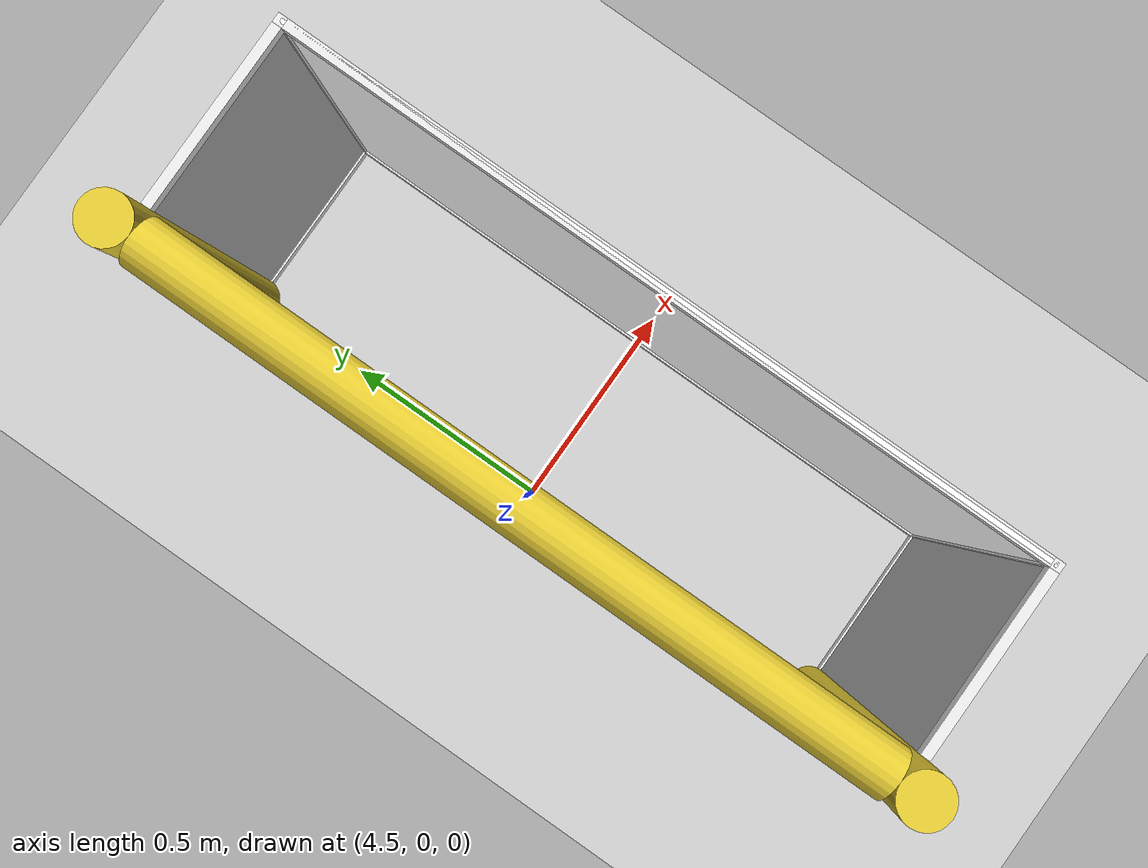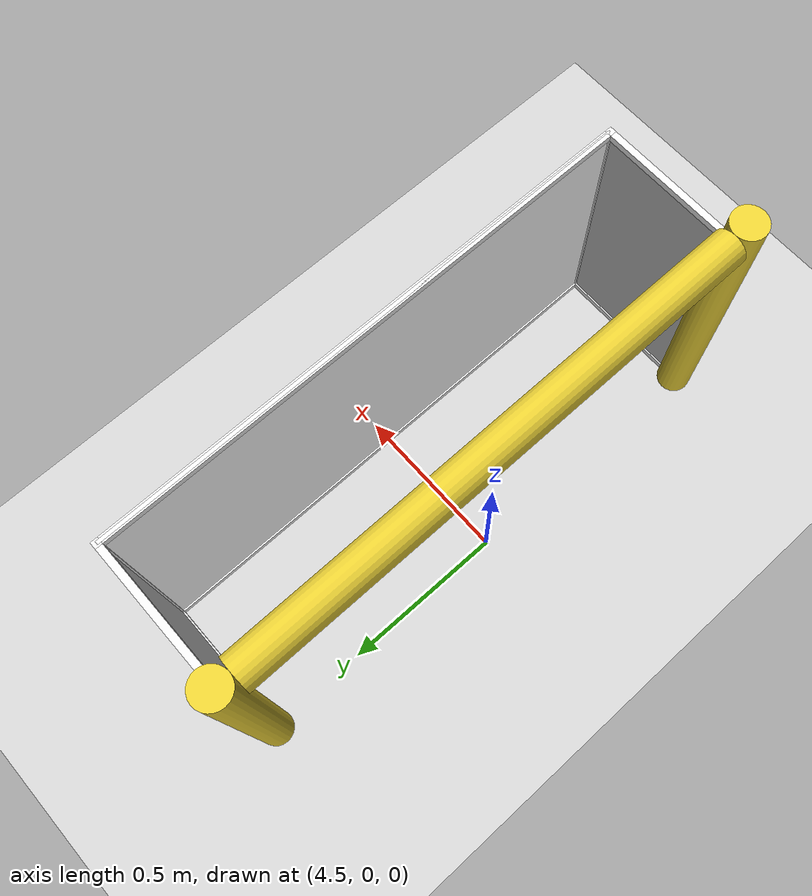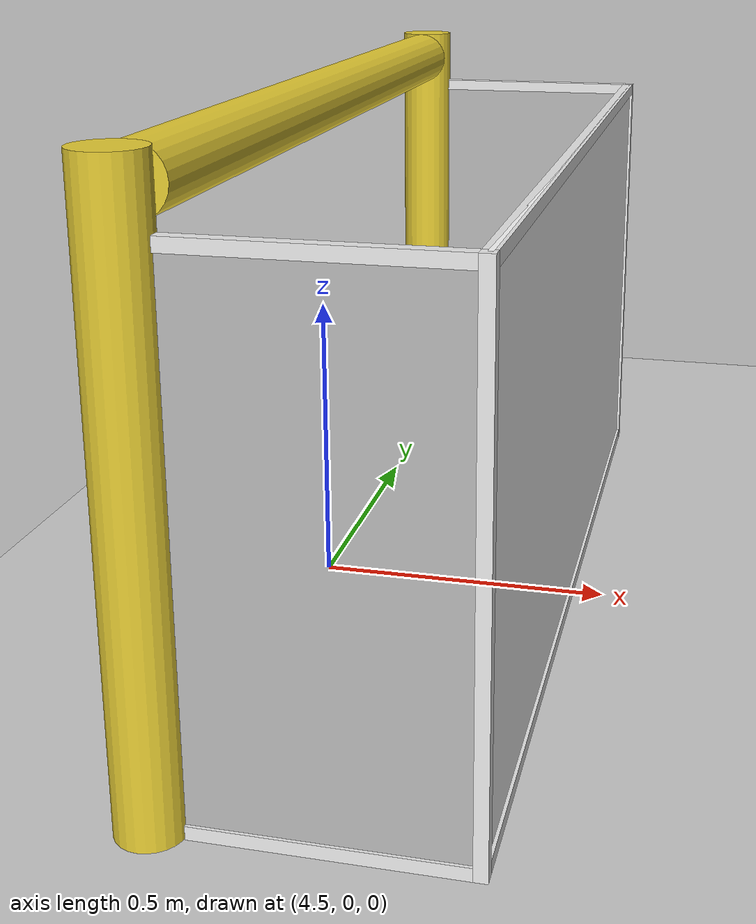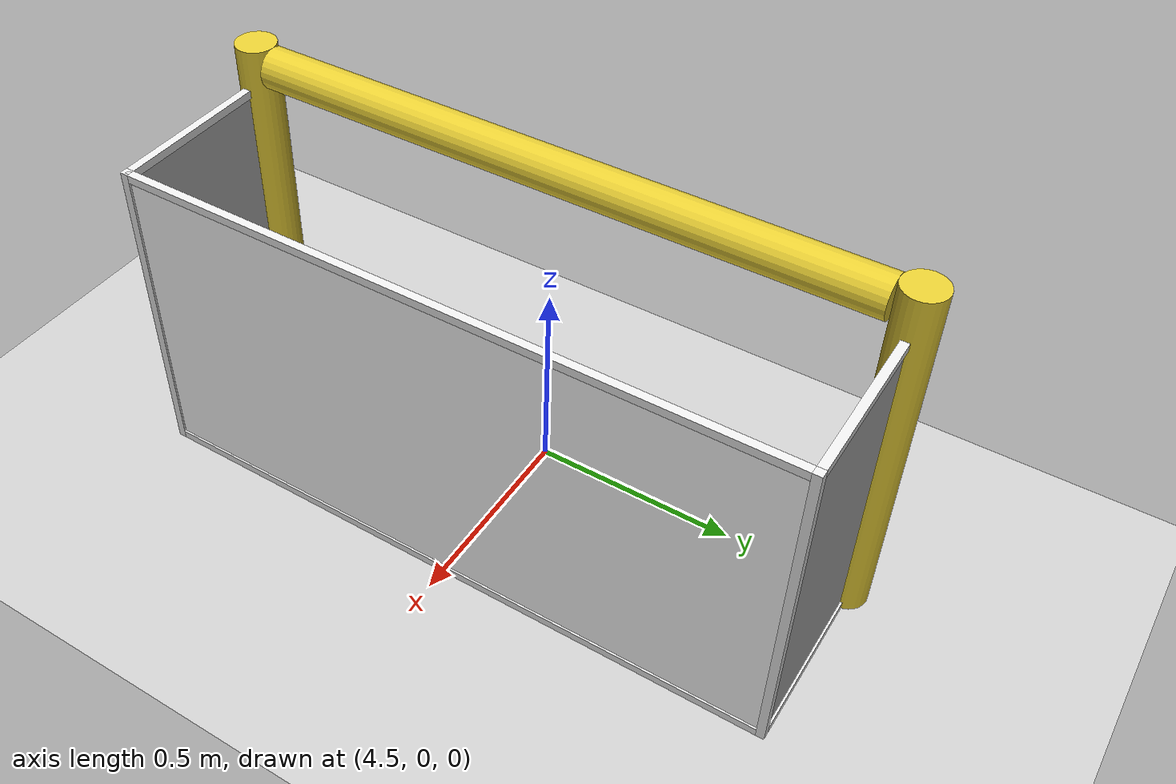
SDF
<sdf version="1.7">
 <world name="default">
  <model name="ground_plane">
   <static>1</static>
   <link name="link">
    <collision name="collision">
     <geometry><plane><normal>0 0 1</normal><size>100 100</size></plane></geometry>
     <surface><friction><ode><mu>100</mu><mu2>50</mu2></ode></friction></surface>
    </collision>
    <visual name="visual">
     <cast_shadows>0</cast_shadows>
     <geometry><plane><normal>0 0 1</normal><size>100 100</size></plane></geometry>
     <material>
      <script><uri>file://media/materials/scripts/gazebo.material</uri><name>Gazebo/Grey</name></script>
     </material>
    </visual>
   </link>
  </model>
  <model name="WALLS2">
   <link name="Wall_13">
    <pose>-4.87158 0.88 0 0 -0 0</pose>
    <inertial>
     <mass>1</mass>
     <inertia><ixx>1</ixx><ixy>0</ixy><ixz>0</ixz><iyy>1</iyy><iyz>0</iyz><izz>1</izz></inertia>
    </inertial>
    <visual name="Wall_13_Visual">
     <pose>0 0 0.45 0 -0 0</pose>
     <geometry><box><size>0.65 0.15 0.9</size></box></geometry>
     <material>
      <script><uri>file://media/materials/scripts/gazebo.material</uri><name>Gazebo/Grey</name></script>
      <ambient>1 1 1 1</ambient>
      <shader type="pixel"><normal_map>__default__</normal_map></shader>
      <diffuse>0.7 0.7 0.7 1</diffuse>
      <specular>0.01 0.01 0.01 1</specular>
      <emissive>0 0 0 1</emissive>
     </material>
     <meta><layer>0</layer></meta>
     <transparency>1</transparency>
    </visual>
    <collision name="Wall_13_Collision">
     <pose>0 0 0.45 0 -0 0</pose>
     <geometry><box><size>0.65 0.15 0.9</size></box></geometry>
     <surface>
      <friction>
       <ode><mu>1</mu><mu2>1</mu2><fdir1>0 0 0</fdir1><slip1>0</slip1><slip2>0</slip2></ode>
       <torsional>
        <coefficient>1</coefficient>
        <patch_radius>0</patch_radius>
        <surface_radius>0</surface_radius>
        <use_patch_radius>1</use_patch_radius>
        <ode><slip>0</slip></ode>
       </torsional>
      </friction>
      <bounce><restitution_coefficient>0</restitution_coefficient><threshold>1e+06</threshold></bounce>
      <contact>
       <collide_without_contact>0</collide_without_contact>
       <collide_without_contact_bitmask>1</collide_without_contact_bitmask>
       <collide_bitmask>1</collide_bitmask>
       <ode>
        <soft_cfm>0</soft_cfm>
        <soft_erp>0.2</soft_erp>
        <kp>1e+13</kp>
        <kd>1</kd>
        <max_vel>0.01</max_vel>
        <min_depth>0</min_depth>
       </ode>
       <bullet>
        <split_impulse>1</split_impulse>
        <split_impulse_penetration_threshold>-0.01</split_impulse_penetration_threshold>
        <soft_cfm>0</soft_cfm>
        <soft_erp>0.2</soft_erp>
        <kp>1e+13</kp>
        <kd>1</kd>
       </bullet>
      </contact>
     </surface>
    </collision>
   </link>
   <link name="Wall_15">
    <pose>-4.87158 -0.88 0 0 -0 0</pose>
    <inertial>
     <mass>1</mass>
     <inertia><ixx>1</ixx><ixy>0</ixy><ixz>0</ixz><iyy>1</iyy><iyz>0</iyz><izz>1</izz></inertia>
    </inertial>
    <visual name="Wall_15_Visual">
     <pose>0 0 0.45 0 -0 0</pose>
     <geometry><box><size>0.65 0.15 0.9</size></box></geometry>
     <material>
      <script><uri>file://media/materials/scripts/gazebo.material</uri><name>Gazebo/Grey</name></script>
      <ambient>1 1 1 1</ambient>
      <shader type="pixel"><normal_map>__default__</normal_map></shader>
      <diffuse>0.7 0.7 0.7 1</diffuse>
      <specular>0.01 0.01 0.01 1</specular>
      <emissive>0 0 0 1</emissive>
     </material>
     <meta><layer>0</layer></meta>
     <transparency>1</transparency>
    </visual>
    <collision name="Wall_15_Collision">
     <pose>0 0 0.45 0 -0 0</pose>
     <geometry><box><size>0.65 0.15 0.9</size></box></geometry>
     <surface>
      <friction>
       <ode><mu>1</mu><mu2>1</mu2><fdir1>0 0 0</fdir1><slip1>0</slip1><slip2>0</slip2></ode>
       <torsional>
        <coefficient>1</coefficient>
        <patch_radius>0</patch_radius>
        <surface_radius>0</surface_radius>
        <use_patch_radius>1</use_patch_radius>
        <ode><slip>0</slip></ode>
       </torsional>
      </friction>
      <bounce><restitution_coefficient>0</restitution_coefficient><threshold>1e+06</threshold></bounce>
      <contact>
       <collide_without_contact>0</collide_without_contact>
       <collide_without_contact_bitmask>1</collide_without_contact_bitmask>
       <collide_bitmask>1</collide_bitmask>
       <ode>
        <soft_cfm>0</soft_cfm>
        <soft_erp>0.2</soft_erp>
        <kp>1e+13</kp>
        <kd>1</kd>
        <max_vel>0.01</max_vel>
        <min_depth>0</min_depth>
       </ode>
       <bullet>
        <split_impulse>1</split_impulse>
        <split_impulse_penetration_threshold>-0.01</split_impulse_penetration_threshold>
        <soft_cfm>0</soft_cfm>
        <soft_erp>0.2</soft_erp>
        <kp>1e+13</kp>
        <kd>1</kd>
       </bullet>
      </contact>
     </surface>
    </collision>
   </link>
   <link name="Wall_2">
    <pose>4.87141 -0.88 0 0 -0 0</pose>
    <inertial>
     <mass>1</mass>
     <inertia><ixx>1</ixx><ixy>0</ixy><ixz>0</ixz><iyy>1</iyy><iyz>0</iyz><izz>1</izz></inertia>
    </inertial>
    <visual name="Wall_2_Visual">
     <pose>0 0 0.45 0 -0 0</pose>
     <geometry><box><size>0.65 0.15 0.9</size></box></geometry>
     <material>
      <script><uri>file://media/materials/scripts/gazebo.material</uri><name>Gazebo/Grey</name></script>
      <ambient>1 1 1 1</ambient>
      <shader type="pixel"><normal_map>__default__</normal_map></shader>
      <diffuse>0.7 0.7 0.7 1</diffuse>
      <specular>0.01 0.01 0.01 1</specular>
      <emissive>0 0 0 1</emissive>
     </material>
     <meta><layer>0</layer></meta>
     <transparency>1</transparency>
    </visual>
    <collision name="Wall_2_Collision">
     <pose>0 0 0.45 0 -0 0</pose>
     <geometry><box><size>0.65 0.15 0.9</size></box></geometry>
     <surface>
      <friction>
       <ode><mu>1</mu><mu2>1</mu2><fdir1>0 0 0</fdir1><slip1>0</slip1><slip2>0</slip2></ode>
       <torsional>
        <coefficient>1</coefficient>
        <patch_radius>0</patch_radius>
        <surface_radius>0</surface_radius>
        <use_patch_radius>1</use_patch_radius>
        <ode><slip>0</slip></ode>
       </torsional>
      </friction>
      <bounce><restitution_coefficient>0</restitution_coefficient><threshold>1e+06</threshold></bounce>
      <contact>
       <collide_without_contact>0</collide_without_contact>
       <collide_without_contact_bitmask>1</collide_without_contact_bitmask>
       <collide_bitmask>1</collide_bitmask>
       <ode>
        <soft_cfm>0</soft_cfm>
        <soft_erp>0.2</soft_erp>
        <kp>1e+13</kp>
        <kd>1</kd>
        <max_vel>0.01</max_vel>
        <min_depth>0</min_depth>
       </ode>
       <bullet>
        <split_impulse>1</split_impulse>
        <split_impulse_penetration_threshold>-0.01</split_impulse_penetration_threshold>
        <soft_cfm>0</soft_cfm>
        <soft_erp>0.2</soft_erp>
        <kp>1e+13</kp>
        <kd>1</kd>
       </bullet>
      </contact>
     </surface>
    </collision>
   </link>
   <link name="Wall_20">
    <pose>-5.12158 0 0 0 0 -1.5708</pose>
    <inertial>
     <mass>1</mass>
     <inertia><ixx>1</ixx><ixy>0</ixy><ixz>0</ixz><iyy>1</iyy><iyz>0</iyz><izz>1</izz></inertia>
    </inertial>
    <visual name="Wall_20_Visual">
     <pose>0 0 0.45 0 -0 0</pose>
     <geometry><box><size>1.96 0.2 0.9</size></box></geometry>
     <material>
      <script><uri>file://media/materials/scripts/gazebo.material</uri><name>Gazebo/Grey</name></script>
      <ambient>1 1 1 1</ambient>
      <shader type="pixel"><normal_map>__default__</normal_map></shader>
      <diffuse>0.7 0.7 0.7 1</diffuse>
      <specular>0.01 0.01 0.01 1</specular>
      <emissive>0 0 0 1</emissive>
     </material>
     <meta><layer>0</layer></meta>
     <transparency>1</transparency>
    </visual>
    <collision name="Wall_20_Collision">
     <pose>0 0 0.45 0 -0 0</pose>
     <geometry><box><size>1.96 0.2 0.9</size></box></geometry>
     <surface>
      <friction>
       <ode><mu>1</mu><mu2>1</mu2><fdir1>0 0 0</fdir1><slip1>0</slip1><slip2>0</slip2></ode>
       <torsional>
        <coefficient>1</coefficient>
        <patch_radius>0</patch_radius>
        <surface_radius>0</surface_radius>
        <use_patch_radius>1</use_patch_radius>
        <ode><slip>0</slip></ode>
       </torsional>
      </friction>
      <bounce><restitution_coefficient>0</restitution_coefficient><threshold>1e+06</threshold></bounce>
      <contact>
       <collide_without_contact>0</collide_without_contact>
       <collide_without_contact_bitmask>1</collide_without_contact_bitmask>
       <collide_bitmask>1</collide_bitmask>
       <ode>
        <soft_cfm>0</soft_cfm>
        <soft_erp>0.2</soft_erp>
        <kp>1e+13</kp>
        <kd>1</kd>
        <max_vel>0.01</max_vel>
        <min_depth>0</min_depth>
       </ode>
       <bullet>
        <split_impulse>1</split_impulse>
        <split_impulse_penetration_threshold>-0.01</split_impulse_penetration_threshold>
        <soft_cfm>0</soft_cfm>
        <soft_erp>0.2</soft_erp>
        <kp>1e+13</kp>
        <kd>1</kd>
       </bullet>
      </contact>
     </surface>
    </collision>
   </link>
   <link name="Wall_5">
    <pose>5.11991 0 0 0 -0 1.5725</pose>
    <inertial>
     <mass>1</mass>
     <inertia><ixx>1</ixx><ixy>0</ixy><ixz>0</ixz><iyy>1</iyy><iyz>0</iyz><izz>1</izz></inertia>
    </inertial>
    <visual name="Wall_5_Visual">
     <pose>0 0 0.45 0 -0 0</pose>
     <geometry><box><size>1.96 0.2 0.9</size></box></geometry>
     <material>
      <script><uri>file://media/materials/scripts/gazebo.material</uri><name>Gazebo/Grey</name></script>
      <ambient>1 1 1 1</ambient>
      <shader type="pixel"><normal_map>__default__</normal_map></shader>
      <diffuse>0.7 0.7 0.7 1</diffuse>
      <specular>0.01 0.01 0.01 1</specular>
      <emissive>0 0 0 1</emissive>
     </material>
     <meta><layer>0</layer></meta>
     <transparency>1</transparency>
    </visual>
    <collision name="Wall_5_Collision">
     <pose>0 0 0.45 0 -0 0</pose>
     <geometry><box><size>1.96 0.2 0.9</size></box></geometry>
     <surface>
      <friction>
       <ode><mu>1</mu><mu2>1</mu2><fdir1>0 0 0</fdir1><slip1>0</slip1><slip2>0</slip2></ode>
       <torsional>
        <coefficient>1</coefficient>
        <patch_radius>0</patch_radius>
        <surface_radius>0</surface_radius>
        <use_patch_radius>1</use_patch_radius>
        <ode><slip>0</slip></ode>
       </torsional>
      </friction>
      <bounce><restitution_coefficient>0</restitution_coefficient><threshold>1e+06</threshold></bounce>
      <contact>
       <collide_without_contact>0</collide_without_contact>
       <collide_without_contact_bitmask>1</collide_without_contact_bitmask>
       <collide_bitmask>1</collide_bitmask>
       <ode>
        <soft_cfm>0</soft_cfm>
        <soft_erp>0.2</soft_erp>
        <kp>1e+13</kp>
        <kd>1</kd>
        <max_vel>0.01</max_vel>
        <min_depth>0</min_depth>
       </ode>
       <bullet>
        <split_impulse>1</split_impulse>
        <split_impulse_penetration_threshold>-0.01</split_impulse_penetration_threshold>
        <soft_cfm>0</soft_cfm>
        <soft_erp>0.2</soft_erp>
        <kp>1e+13</kp>
        <kd>1</kd>
       </bullet>
      </contact>
     </surface>
    </collision>
   </link>
   <link name="Wall_6">
    <pose>4.86841 0.88 0 0 -0 3.14159</pose>
    <inertial>
     <mass>1</mass>
     <inertia><ixx>1</ixx><ixy>0</ixy><ixz>0</ixz><iyy>1</iyy><iyz>0</iyz><izz>1</izz></inertia>
    </inertial>
    <visual name="Wall_6_Visual">
     <pose>0 0 0.45 0 -0 0</pose>
     <geometry><box><size>0.65 0.15 0.9</size></box></geometry>
     <material>
      <script><uri>file://media/materials/scripts/gazebo.material</uri><name>Gazebo/Grey</name></script>
      <ambient>1 1 1 1</ambient>
      <shader type="pixel"><normal_map>__default__</normal_map></shader>
      <diffuse>0.7 0.7 0.7 1</diffuse>
      <specular>0.01 0.01 0.01 1</specular>
      <emissive>0 0 0 1</emissive>
     </material>
     <meta><layer>0</layer></meta>
     <transparency>1</transparency>
    </visual>
    <collision name="Wall_6_Collision">
     <pose>0 0 0.45 0 -0 0</pose>
     <geometry><box><size>0.65 0.15 0.9</size></box></geometry>
     <surface>
      <friction>
       <ode><mu>1</mu><mu2>1</mu2><fdir1>0 0 0</fdir1><slip1>0</slip1><slip2>0</slip2></ode>
       <torsional>
        <coefficient>1</coefficient>
        <patch_radius>0</patch_radius>
        <surface_radius>0</surface_radius>
        <use_patch_radius>1</use_patch_radius>
        <ode><slip>0</slip></ode>
       </torsional>
      </friction>
      <bounce><restitution_coefficient>0</restitution_coefficient><threshold>1e+06</threshold></bounce>
      <contact>
       <collide_without_contact>0</collide_without_contact>
       <collide_without_contact_bitmask>1</collide_without_contact_bitmask>
       <collide_bitmask>1</collide_bitmask>
       <ode>
        <soft_cfm>0</soft_cfm>
        <soft_erp>0.2</soft_erp>
        <kp>1e+13</kp>
        <kd>1</kd>
        <max_vel>0.01</max_vel>
        <min_depth>0</min_depth>
       </ode>
       <bullet>
        <split_impulse>1</split_impulse>
        <split_impulse_penetration_threshold>-0.01</split_impulse_penetration_threshold>
        <soft_cfm>0</soft_cfm>
        <soft_erp>0.2</soft_erp>
        <kp>1e+13</kp>
        <kd>1</kd>
       </bullet>
      </contact>
     </surface>
    </collision>
   </link>
   <static>1</static>
   <pose>0.00158 0 0 0 -0 0</pose>
  </model>
  <model name="RoboCup_2014_SPL_Goal_clone">
   <link name="left_post">
    <pose>0 0.8 0.45 0 -0 0</pose>
    <inertial>
     <mass>1</mass>
     <inertia><ixx>1</ixx><ixy>0</ixy><ixz>0</ixz><iyy>1</iyy><iyz>0</iyz><izz>1</izz></inertia>
    </inertial>
    <visual name="visual">
     <geometry><cylinder><radius>0.05</radius><length>0.9</length></cylinder></geometry>
     <material>
      <script><uri>file://media/materials/scripts/gazebo.material</uri><name>Gazebo/ZincYellow</name></script>
      <shader type="pixel"><normal_map>__default__</normal_map></shader>
     </material>
    </visual>
    <collision name="collision">
     <geometry><cylinder><radius>0.05</radius><length>0.9</length></cylinder></geometry>
     <surface>
      <friction>
       <ode><mu>1</mu><mu2>1</mu2><fdir1>0 0 0</fdir1><slip1>0</slip1><slip2>0</slip2></ode>
       <torsional>
        <coefficient>1</coefficient>
        <patch_radius>0</patch_radius>
        <surface_radius>0</surface_radius>
        <use_patch_radius>1</use_patch_radius>
        <ode><slip>0</slip></ode>
       </torsional>
      </friction>
      <bounce><restitution_coefficient>1</restitution_coefficient><threshold>1e+06</threshold></bounce>
      <contact>
       <collide_without_contact>0</collide_without_contact>
       <collide_without_contact_bitmask>1</collide_without_contact_bitmask>
       <collide_bitmask>1</collide_bitmask>
       <ode>
        <soft_cfm>0</soft_cfm>
        <soft_erp>0.2</soft_erp>
        <kp>1e+13</kp>
        <kd>1</kd>
        <max_vel>0.01</max_vel>
        <min_depth>0</min_depth>
       </ode>
       <bullet>
        <split_impulse>1</split_impulse>
        <split_impulse_penetration_threshold>-0.01</split_impulse_penetration_threshold>
        <soft_cfm>0</soft_cfm>
        <soft_erp>0.2</soft_erp>
        <kp>1e+13</kp>
        <kd>1</kd>
       </bullet>
      </contact>
     </surface>
    </collision>
   </link>
   <link name="center_net">
    <pose>0.44 0 0.4 0 -0 0</pose>
    <inertial>
     <mass>1</mass>
     <inertia><ixx>1</ixx><ixy>0</ixy><ixz>0</ixz><iyy>1</iyy><iyz>0</iyz><izz>1</izz></inertia>
    </inertial>
    <visual name="visual">
     <geometry><box><size>0.01 1.6 0.8</size></box></geometry>
     <material>
      <script>
       <uri>model://robocup09_spl_field/materials/scripts/</uri>
       <uri>model://robocup09_spl_field/materials/textures/</uri>
       <name>RoboCup/Net</name>
      </script>
      <shader type="pixel"><normal_map>__default__</normal_map></shader>
      <ambient>1 1 1 1</ambient>
      <diffuse>1 1 1 1</diffuse>
      <specular>0 0 0 1</specular>
      <emissive>0 0 0 1</emissive>
     </material>
    </visual>
    <collision name="collision">
     <geometry><box><size>0.01 1.6 0.8</size></box></geometry>
     <surface>
      <friction>
       <ode><mu>1</mu><mu2>1</mu2><fdir1>0 0 0</fdir1><slip1>0</slip1><slip2>0</slip2></ode>
       <torsional>
        <coefficient>1</coefficient>
        <patch_radius>0</patch_radius>
        <surface_radius>0</surface_radius>
        <use_patch_radius>1</use_patch_radius>
        <ode><slip>0</slip></ode>
       </torsional>
      </friction>
      <bounce><restitution_coefficient>0</restitution_coefficient><threshold>1e+06</threshold></bounce>
      <contact>
       <collide_without_contact>0</collide_without_contact>
       <collide_without_contact_bitmask>1</collide_without_contact_bitmask>
       <collide_bitmask>1</collide_bitmask>
       <ode>
        <soft_cfm>0</soft_cfm>
        <soft_erp>0.2</soft_erp>
        <kp>1e+13</kp>
        <kd>1</kd>
        <max_vel>0.01</max_vel>
        <min_depth>0</min_depth>
       </ode>
       <bullet>
        <split_impulse>1</split_impulse>
        <split_impulse_penetration_threshold>-0.01</split_impulse_penetration_threshold>
        <soft_cfm>0</soft_cfm>
        <soft_erp>0.2</soft_erp>
        <kp>1e+13</kp>
        <kd>1</kd>
       </bullet>
      </contact>
     </surface>
    </collision>
   </link>
   <link name="center_support_horiz_lower">
    <pose>0.44 0 0.01 3.14159 1.57079 3.14159</pose>
    <visual name="visual">
     <geometry><box><size>0.02 1.58 0.02</size></box></geometry>
     <material>
      <script><uri>file://media/materials/scripts/gazebo.material</uri><name>Gazebo/White</name></script>
      <shader type="pixel"/>
     </material>
    </visual>
    <collision name="collision">
     <geometry><box><size>0.02 1.58 0.02</size></box></geometry>
     <surface>
      <friction>
       <ode><mu>1</mu><mu2>1</mu2><fdir1>0 0 0</fdir1><slip1>0</slip1><slip2>0</slip2></ode>
       <torsional>
        <coefficient>1</coefficient>
        <patch_radius>0</patch_radius>
        <surface_radius>0</surface_radius>
        <use_patch_radius>1</use_patch_radius>
        <ode><slip>0</slip></ode>
       </torsional>
      </friction>
      <bounce><restitution_coefficient>0</restitution_coefficient><threshold>1e+06</threshold></bounce>
      <contact>
       <collide_without_contact>0</collide_without_contact>
       <collide_without_contact_bitmask>1</collide_without_contact_bitmask>
       <collide_bitmask>1</collide_bitmask>
       <ode>
        <soft_cfm>0</soft_cfm>
        <soft_erp>0.2</soft_erp>
        <kp>1e+13</kp>
        <kd>1</kd>
        <max_vel>0.01</max_vel>
        <min_depth>0</min_depth>
       </ode>
       <bullet>
        <split_impulse>1</split_impulse>
        <split_impulse_penetration_threshold>-0.01</split_impulse_penetration_threshold>
        <soft_cfm>0</soft_cfm>
        <soft_erp>0.2</soft_erp>
        <kp>1e+13</kp>
        <kd>1</kd>
       </bullet>
      </contact>
     </surface>
    </collision>
   </link>
   <link name="center_support_horiz_upper">
    <pose>0.44 0 0.79 3.14159 1.57079 3.14159</pose>
    <visual name="visual">
     <geometry><box><size>0.02 1.58 0.02</size></box></geometry>
     <material>
      <script><uri>file://media/materials/scripts/gazebo.material</uri><name>Gazebo/White</name></script>
      <shader type="pixel"/>
     </material>
    </visual>
    <collision name="collision">
     <geometry><box><size>0.02 1.58 0.02</size></box></geometry>
     <surface>
      <friction>
       <ode><mu>1</mu><mu2>1</mu2><fdir1>0 0 0</fdir1><slip1>0</slip1><slip2>0</slip2></ode>
       <torsional>
        <coefficient>1</coefficient>
        <patch_radius>0</patch_radius>
        <surface_radius>0</surface_radius>
        <use_patch_radius>1</use_patch_radius>
        <ode><slip>0</slip></ode>
       </torsional>
      </friction>
      <bounce><restitution_coefficient>0</restitution_coefficient><threshold>1e+06</threshold></bounce>
      <contact>
       <collide_without_contact>0</collide_without_contact>
       <collide_without_contact_bitmask>1</collide_without_contact_bitmask>
       <collide_bitmask>1</collide_bitmask>
       <ode>
        <soft_cfm>0</soft_cfm>
        <soft_erp>0.2</soft_erp>
        <kp>1e+13</kp>
        <kd>1</kd>
        <max_vel>0.01</max_vel>
        <min_depth>0</min_depth>
       </ode>
       <bullet>
        <split_impulse>1</split_impulse>
        <split_impulse_penetration_threshold>-0.01</split_impulse_penetration_threshold>
        <soft_cfm>0</soft_cfm>
        <soft_erp>0.2</soft_erp>
        <kp>1e+13</kp>
        <kd>1</kd>
       </bullet>
      </contact>
     </surface>
    </collision>
   </link>
   <link name="crossbar">
    <pose>0 0 0.85 1.56994 1.57 -4.3e-05</pose>
    <inertial>
     <mass>1</mass>
     <inertia><ixx>1</ixx><ixy>0</ixy><ixz>0</ixz><iyy>1</iyy><iyz>0</iyz><izz>1</izz></inertia>
    </inertial>
    <visual name="visual">
     <geometry><cylinder><radius>0.05</radius><length>1.5</length></cylinder></geometry>
     <material>
      <script><uri>file://media/materials/scripts/gazebo.material</uri><name>Gazebo/ZincYellow</name></script>
      <shader type="pixel"><normal_map>__default__</normal_map></shader>
      <ambient>0.973 0.953 0.208 1</ambient>
      <diffuse>0.973 0.953 0.208 1</diffuse>
      <specular>0.973 0.953 0.208 1</specular>
      <emissive>0 0 0 1</emissive>
     </material>
    </visual>
    <collision name="collision">
     <geometry><cylinder><radius>0.05</radius><length>1.5</length></cylinder></geometry>
     <surface>
      <friction>
       <ode><mu>1</mu><mu2>1</mu2><fdir1>0 0 0</fdir1><slip1>0</slip1><slip2>0</slip2></ode>
       <torsional>
        <coefficient>1</coefficient>
        <patch_radius>0</patch_radius>
        <surface_radius>0</surface_radius>
        <use_patch_radius>1</use_patch_radius>
        <ode><slip>0</slip></ode>
       </torsional>
      </friction>
      <bounce><restitution_coefficient>1</restitution_coefficient><threshold>1e+06</threshold></bounce>
      <contact>
       <collide_without_contact>0</collide_without_contact>
       <collide_without_contact_bitmask>1</collide_without_contact_bitmask>
       <collide_bitmask>1</collide_bitmask>
       <ode>
        <soft_cfm>0</soft_cfm>
        <soft_erp>0.2</soft_erp>
        <kp>1e+13</kp>
        <kd>1</kd>
        <max_vel>0.01</max_vel>
        <min_depth>0</min_depth>
       </ode>
       <bullet>
        <split_impulse>1</split_impulse>
        <split_impulse_penetration_threshold>-0.01</split_impulse_penetration_threshold>
        <soft_cfm>0</soft_cfm>
        <soft_erp>0.2</soft_erp>
        <kp>1e+13</kp>
        <kd>1</kd>
       </bullet>
      </contact>
     </surface>
    </collision>
    <collision name="collision_1">
     <pose>0.05 0.3 0 0 -0 0</pose>
     <geometry><box><size>0.05 0.5 1.6</size></box></geometry>
     <surface>
      <friction>
       <ode><mu>1</mu><mu2>1</mu2><fdir1>0 0 0</fdir1><slip1>0</slip1><slip2>0</slip2></ode>
       <torsional>
        <coefficient>1</coefficient>
        <patch_radius>0</patch_radius>
        <surface_radius>0</surface_radius>
        <use_patch_radius>1</use_patch_radius>
        <ode><slip>0</slip></ode>
       </torsional>
      </friction>
      <bounce><restitution_coefficient>1</restitution_coefficient><threshold>1e+06</threshold></bounce>
      <contact>
       <collide_without_contact>0</collide_without_contact>
       <collide_without_contact_bitmask>1</collide_without_contact_bitmask>
       <collide_bitmask>1</collide_bitmask>
       <ode>
        <soft_cfm>0</soft_cfm>
        <soft_erp>0.2</soft_erp>
        <kp>1e+13</kp>
        <kd>1</kd>
        <max_vel>0.01</max_vel>
        <min_depth>0</min_depth>
       </ode>
       <bullet>
        <split_impulse>1</split_impulse>
        <split_impulse_penetration_threshold>-0.01</split_impulse_penetration_threshold>
        <soft_cfm>0</soft_cfm>
        <soft_erp>0.2</soft_erp>
        <kp>1e+13</kp>
        <kd>1</kd>
       </bullet>
      </contact>
     </surface>
    </collision>
   </link>
   <link name="left_net">
    <pose>0.24 0.8 0.4 0 -0 0</pose>
    <visual name="visual">
     <geometry><box><size>0.38 0.01 0.76</size></box></geometry>
     <material>
      <script>
       <uri>model://robocup09_spl_field/materials/scripts/</uri>
       <uri>model://robocup09_spl_field/materials/textures/</uri>
       <name>RoboCup/Net</name>
      </script>
      <shader type="pixel"/>
     </material>
    </visual>
    <collision name="collision">
     <geometry><box><size>0.38 0.01 0.76</size></box></geometry>
     <surface>
      <friction>
       <ode><mu>1</mu><mu2>1</mu2><fdir1>0 0 0</fdir1><slip1>0</slip1><slip2>0</slip2></ode>
       <torsional>
        <coefficient>1</coefficient>
        <patch_radius>0</patch_radius>
        <surface_radius>0</surface_radius>
        <use_patch_radius>1</use_patch_radius>
        <ode><slip>0</slip></ode>
       </torsional>
      </friction>
      <bounce><restitution_coefficient>0</restitution_coefficient><threshold>1e+06</threshold></bounce>
      <contact>
       <collide_without_contact>0</collide_without_contact>
       <collide_without_contact_bitmask>1</collide_without_contact_bitmask>
       <collide_bitmask>1</collide_bitmask>
       <ode>
        <soft_cfm>0</soft_cfm>
        <soft_erp>0.2</soft_erp>
        <kp>1e+13</kp>
        <kd>1</kd>
        <max_vel>0.01</max_vel>
        <min_depth>0</min_depth>
       </ode>
       <bullet>
        <split_impulse>1</split_impulse>
        <split_impulse_penetration_threshold>-0.01</split_impulse_penetration_threshold>
        <soft_cfm>0</soft_cfm>
        <soft_erp>0.2</soft_erp>
        <kp>1e+13</kp>
        <kd>1</kd>
       </bullet>
      </contact>
     </surface>
    </collision>
   </link>
   <link name="left_support_horiz_lower">
    <pose>0.24 0.8 0.01 0 -0 0</pose>
    <visual name="visual">
     <geometry><box><size>0.38 0.02 0.02</size></box></geometry>
     <material>
      <script><uri>file://media/materials/scripts/gazebo.material</uri><name>Gazebo/White</name></script>
      <shader type="pixel"/>
     </material>
    </visual>
    <collision name="collision">
     <geometry><box><size>0.38 0.02 0.02</size></box></geometry>
     <surface>
      <friction>
       <ode><mu>1</mu><mu2>1</mu2><fdir1>0 0 0</fdir1><slip1>0</slip1><slip2>0</slip2></ode>
       <torsional>
        <coefficient>1</coefficient>
        <patch_radius>0</patch_radius>
        <surface_radius>0</surface_radius>
        <use_patch_radius>1</use_patch_radius>
        <ode><slip>0</slip></ode>
       </torsional>
      </friction>
      <bounce><restitution_coefficient>0</restitution_coefficient><threshold>1e+06</threshold></bounce>
      <contact>
       <collide_without_contact>0</collide_without_contact>
       <collide_without_contact_bitmask>1</collide_without_contact_bitmask>
       <collide_bitmask>1</collide_bitmask>
       <ode>
        <soft_cfm>0</soft_cfm>
        <soft_erp>0.2</soft_erp>
        <kp>1e+13</kp>
        <kd>1</kd>
        <max_vel>0.01</max_vel>
        <min_depth>0</min_depth>
       </ode>
       <bullet>
        <split_impulse>1</split_impulse>
        <split_impulse_penetration_threshold>-0.01</split_impulse_penetration_threshold>
        <soft_cfm>0</soft_cfm>
        <soft_erp>0.2</soft_erp>
        <kp>1e+13</kp>
        <kd>1</kd>
       </bullet>
      </contact>
     </surface>
    </collision>
   </link>
   <link name="left_support_horiz_upper">
    <pose>0.24 0.8 0.79 0 -0 0</pose>
    <visual name="visual">
     <geometry><box><size>0.38 0.02 0.02</size></box></geometry>
     <material>
      <script><uri>file://media/materials/scripts/gazebo.material</uri><name>Gazebo/White</name></script>
      <shader type="pixel"/>
     </material>
    </visual>
    <collision name="collision">
     <geometry><box><size>0.38 0.02 0.02</size></box></geometry>
     <surface>
      <friction>
       <ode><mu>1</mu><mu2>1</mu2><fdir1>0 0 0</fdir1><slip1>0</slip1><slip2>0</slip2></ode>
       <torsional>
        <coefficient>1</coefficient>
        <patch_radius>0</patch_radius>
        <surface_radius>0</surface_radius>
        <use_patch_radius>1</use_patch_radius>
        <ode><slip>0</slip></ode>
       </torsional>
      </friction>
      <bounce><restitution_coefficient>0</restitution_coefficient><threshold>1e+06</threshold></bounce>
      <contact>
       <collide_without_contact>0</collide_without_contact>
       <collide_without_contact_bitmask>1</collide_without_contact_bitmask>
       <collide_bitmask>1</collide_bitmask>
       <ode>
        <soft_cfm>0</soft_cfm>
        <soft_erp>0.2</soft_erp>
        <kp>1e+13</kp>
        <kd>1</kd>
        <max_vel>0.01</max_vel>
        <min_depth>0</min_depth>
       </ode>
       <bullet>
        <split_impulse>1</split_impulse>
        <split_impulse_penetration_threshold>-0.01</split_impulse_penetration_threshold>
        <soft_cfm>0</soft_cfm>
        <soft_erp>0.2</soft_erp>
        <kp>1e+13</kp>
        <kd>1</kd>
       </bullet>
      </contact>
     </surface>
    </collision>
   </link>
   <link name="left_support_vertical">
    <pose>0.44 0.8 0.4 3.14159 1.57079 3.14159</pose>
    <visual name="visual">
     <geometry><box><size>0.8 0.02 0.02</size></box></geometry>
     <material>
      <script><uri>file://media/materials/scripts/gazebo.material</uri><name>Gazebo/White</name></script>
      <shader type="pixel"/>
     </material>
    </visual>
    <collision name="collision">
     <geometry><box><size>0.8 0.02 0.02</size></box></geometry>
     <surface>
      <friction>
       <ode><mu>1</mu><mu2>1</mu2><fdir1>0 0 0</fdir1><slip1>0</slip1><slip2>0</slip2></ode>
       <torsional>
        <coefficient>1</coefficient>
        <patch_radius>0</patch_radius>
        <surface_radius>0</surface_radius>
        <use_patch_radius>1</use_patch_radius>
        <ode><slip>0</slip></ode>
       </torsional>
      </friction>
      <bounce><restitution_coefficient>0</restitution_coefficient><threshold>1e+06</threshold></bounce>
      <contact>
       <collide_without_contact>0</collide_without_contact>
       <collide_without_contact_bitmask>1</collide_without_contact_bitmask>
       <collide_bitmask>1</collide_bitmask>
       <ode>
        <soft_cfm>0</soft_cfm>
        <soft_erp>0.2</soft_erp>
        <kp>1e+13</kp>
        <kd>1</kd>
        <max_vel>0.01</max_vel>
        <min_depth>0</min_depth>
       </ode>
       <bullet>
        <split_impulse>1</split_impulse>
        <split_impulse_penetration_threshold>-0.01</split_impulse_penetration_threshold>
        <soft_cfm>0</soft_cfm>
        <soft_erp>0.2</soft_erp>
        <kp>1e+13</kp>
        <kd>1</kd>
       </bullet>
      </contact>
     </surface>
    </collision>
   </link>
   <link name="right_net">
    <pose>0.24 -0.8 0.4 0 -0 0</pose>
    <visual name="visual">
     <geometry><box><size>0.38 0.01 0.76</size></box></geometry>
     <material>
      <script>
       <uri>model://robocup09_spl_field/materials/scripts/</uri>
       <uri>model://robocup09_spl_field/materials/textures/</uri>
       <name>RoboCup/Net</name>
      </script>
      <shader type="pixel"/>
     </material>
    </visual>
    <collision name="collision">
     <geometry><box><size>0.38 0.01 0.76</size></box></geometry>
     <surface>
      <friction>
       <ode><mu>1</mu><mu2>1</mu2><fdir1>0 0 0</fdir1><slip1>0</slip1><slip2>0</slip2></ode>
       <torsional>
        <coefficient>1</coefficient>
        <patch_radius>0</patch_radius>
        <surface_radius>0</surface_radius>
        <use_patch_radius>1</use_patch_radius>
        <ode><slip>0</slip></ode>
       </torsional>
      </friction>
      <bounce><restitution_coefficient>0</restitution_coefficient><threshold>1e+06</threshold></bounce>
      <contact>
       <collide_without_contact>0</collide_without_contact>
       <collide_without_contact_bitmask>1</collide_without_contact_bitmask>
       <collide_bitmask>1</collide_bitmask>
       <ode>
        <soft_cfm>0</soft_cfm>
        <soft_erp>0.2</soft_erp>
        <kp>1e+13</kp>
        <kd>1</kd>
        <max_vel>0.01</max_vel>
        <min_depth>0</min_depth>
       </ode>
       <bullet>
        <split_impulse>1</split_impulse>
        <split_impulse_penetration_threshold>-0.01</split_impulse_penetration_threshold>
        <soft_cfm>0</soft_cfm>
        <soft_erp>0.2</soft_erp>
        <kp>1e+13</kp>
        <kd>1</kd>
       </bullet>
      </contact>
     </surface>
    </collision>
   </link>
   <link name="right_post">
    <pose>0 -0.8 0.45 0 -0 0</pose>
    <inertial>
     <mass>1</mass>
     <inertia><ixx>1</ixx><ixy>0</ixy><ixz>0</ixz><iyy>1</iyy><iyz>0</iyz><izz>1</izz></inertia>
    </inertial>
    <visual name="visual">
     <geometry><cylinder><radius>0.05</radius><length>0.9</length></cylinder></geometry>
     <material>
      <script><uri>file://media/materials/scripts/gazebo.material</uri><name>Gazebo/ZincYellow</name></script>
      <shader type="pixel"><normal_map>__default__</normal_map></shader>
     </material>
    </visual>
    <collision name="collision">
     <geometry><cylinder><radius>0.05</radius><length>0.9</length></cylinder></geometry>
     <surface>
      <friction>
       <ode><mu>1</mu><mu2>1</mu2><fdir1>0 0 0</fdir1><slip1>0</slip1><slip2>0</slip2></ode>
       <torsional>
        <coefficient>1</coefficient>
        <patch_radius>0</patch_radius>
        <surface_radius>0</surface_radius>
        <use_patch_radius>1</use_patch_radius>
        <ode><slip>0</slip></ode>
       </torsional>
      </friction>
      <bounce><restitution_coefficient>1</restitution_coefficient><threshold>1e+06</threshold></bounce>
      <contact>
       <collide_without_contact>0</collide_without_contact>
       <collide_without_contact_bitmask>1</collide_without_contact_bitmask>
       <collide_bitmask>1</collide_bitmask>
       <ode>
        <soft_cfm>0</soft_cfm>
        <soft_erp>0.2</soft_erp>
        <kp>1e+13</kp>
        <kd>1</kd>
        <max_vel>0.01</max_vel>
        <min_depth>0</min_depth>
       </ode>
       <bullet>
        <split_impulse>1</split_impulse>
        <split_impulse_penetration_threshold>-0.01</split_impulse_penetration_threshold>
        <soft_cfm>0</soft_cfm>
        <soft_erp>0.2</soft_erp>
        <kp>1e+13</kp>
        <kd>1</kd>
       </bullet>
      </contact>
     </surface>
    </collision>
   </link>
   <link name="right_support_horiz_lower">
    <pose>0.24 -0.8 0.01 0 -0 0</pose>
    <visual name="visual">
     <geometry><box><size>0.38 0.02 0.02</size></box></geometry>
     <material>
      <script><uri>file://media/materials/scripts/gazebo.material</uri><name>Gazebo/White</name></script>
      <shader type="pixel"/>
     </material>
    </visual>
    <collision name="collision">
     <geometry><box><size>0.38 0.02 0.02</size></box></geometry>
     <surface>
      <friction>
       <ode><mu>1</mu><mu2>1</mu2><fdir1>0 0 0</fdir1><slip1>0</slip1><slip2>0</slip2></ode>
       <torsional>
        <coefficient>1</coefficient>
        <patch_radius>0</patch_radius>
        <surface_radius>0</surface_radius>
        <use_patch_radius>1</use_patch_radius>
        <ode><slip>0</slip></ode>
       </torsional>
      </friction>
      <bounce><restitution_coefficient>0</restitution_coefficient><threshold>1e+06</threshold></bounce>
      <contact>
       <collide_without_contact>0</collide_without_contact>
       <collide_without_contact_bitmask>1</collide_without_contact_bitmask>
       <collide_bitmask>1</collide_bitmask>
       <ode>
        <soft_cfm>0</soft_cfm>
        <soft_erp>0.2</soft_erp>
        <kp>1e+13</kp>
        <kd>1</kd>
        <max_vel>0.01</max_vel>
        <min_depth>0</min_depth>
       </ode>
       <bullet>
        <split_impulse>1</split_impulse>
        <split_impulse_penetration_threshold>-0.01</split_impulse_penetration_threshold>
        <soft_cfm>0</soft_cfm>
        <soft_erp>0.2</soft_erp>
        <kp>1e+13</kp>
        <kd>1</kd>
       </bullet>
      </contact>
     </surface>
    </collision>
   </link>
   <link name="right_support_horiz_upper">
    <pose>0.24 -0.8 0.79 0 -0 0</pose>
    <visual name="visual">
     <geometry><box><size>0.38 0.02 0.02</size></box></geometry>
     <material>
      <script><uri>file://media/materials/scripts/gazebo.material</uri><name>Gazebo/White</name></script>
      <shader type="pixel"/>
     </material>
    </visual>
    <collision name="collision">
     <geometry><box><size>0.38 0.02 0.02</size></box></geometry>
     <surface>
      <friction>
       <ode><mu>1</mu><mu2>1</mu2><fdir1>0 0 0</fdir1><slip1>0</slip1><slip2>0</slip2></ode>
       <torsional>
        <coefficient>1</coefficient>
        <patch_radius>0</patch_radius>
        <surface_radius>0</surface_radius>
        <use_patch_radius>1</use_patch_radius>
        <ode><slip>0</slip></ode>
       </torsional>
      </friction>
      <bounce><restitution_coefficient>0</restitution_coefficient><threshold>1e+06</threshold></bounce>
      <contact>
       <collide_without_contact>0</collide_without_contact>
       <collide_without_contact_bitmask>1</collide_without_contact_bitmask>
       <collide_bitmask>1</collide_bitmask>
       <ode>
        <soft_cfm>0</soft_cfm>
        <soft_erp>0.2</soft_erp>
        <kp>1e+13</kp>
        <kd>1</kd>
        <max_vel>0.01</max_vel>
        <min_depth>0</min_depth>
       </ode>
       <bullet>
        <split_impulse>1</split_impulse>
        <split_impulse_penetration_threshold>-0.01</split_impulse_penetration_threshold>
        <soft_cfm>0</soft_cfm>
        <soft_erp>0.2</soft_erp>
        <kp>1e+13</kp>
        <kd>1</kd>
       </bullet>
      </contact>
     </surface>
    </collision>
   </link>
   <link name="right_support_vertical">
    <pose>0.44 -0.8 0.4 3.14159 1.57079 3.14159</pose>
    <visual name="visual">
     <geometry><box><size>0.8 0.02 0.02</size></box></geometry>
     <material>
      <script><uri>file://media/materials/scripts/gazebo.material</uri><name>Gazebo/White</name></script>
      <shader type="pixel"/>
     </material>
    </visual>
    <collision name="collision">
     <geometry><box><size>0.8 0.02 0.02</size></box></geometry>
     <surface>
      <friction>
       <ode><mu>1</mu><mu2>1</mu2><fdir1>0 0 0</fdir1><slip1>0</slip1><slip2>0</slip2></ode>
       <torsional>
        <coefficient>1</coefficient>
        <patch_radius>0</patch_radius>
        <surface_radius>0</surface_radius>
        <use_patch_radius>1</use_patch_radius>
        <ode><slip>0</slip></ode>
       </torsional>
      </friction>
      <bounce><restitution_coefficient>0</restitution_coefficient><threshold>1e+06</threshold></bounce>
      <contact>
       <collide_without_contact>0</collide_without_contact>
       <collide_without_contact_bitmask>1</collide_without_contact_bitmask>
       <collide_bitmask>1</collide_bitmask>
       <ode>
        <soft_cfm>0</soft_cfm>
        <soft_erp>0.2</soft_erp>
        <kp>1e+13</kp>
        <kd>1</kd>
        <max_vel>0.01</max_vel>
        <min_depth>0</min_depth>
       </ode>
       <bullet>
        <split_impulse>1</split_impulse>
        <split_impulse_penetration_threshold>-0.01</split_impulse_penetration_threshold>
        <soft_cfm>0</soft_cfm>
        <soft_erp>0.2</soft_erp>
        <kp>1e+13</kp>
        <kd>1</kd>
       </bullet>
      </contact>
     </surface>
    </collision>
   </link>
   <static>1</static>
   <pose>4.5 0 0 0 -0 0</pose>
  </model>
 </world>
</sdf>
